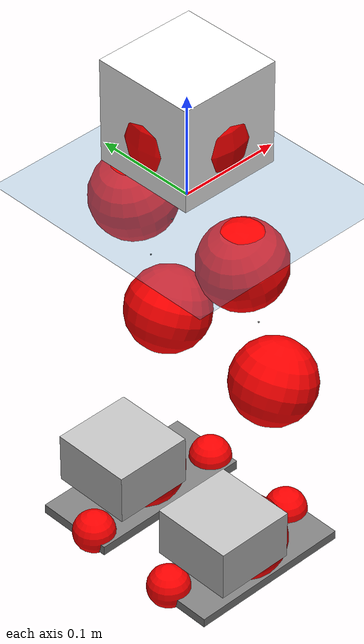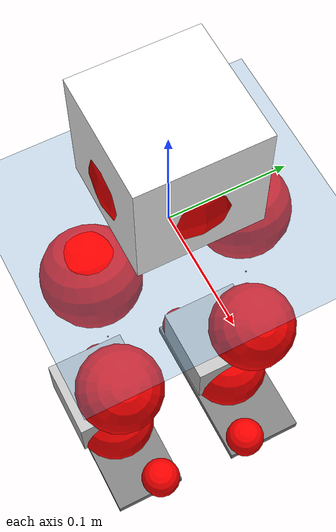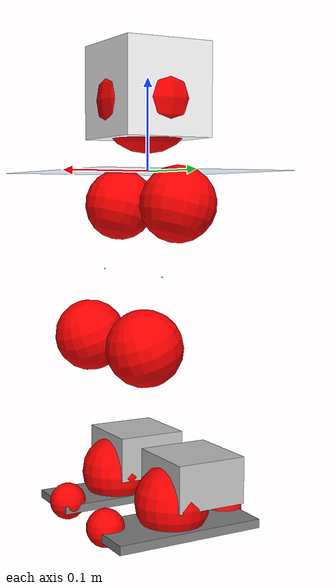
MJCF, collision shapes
<mujoco model="pi_12dof_release_v1">
  <compiler angle="radian" assetdir="assets" balanceinertia="true" inertiafromgeom="false"/>

  <option timestep="0.005" density="1.2" viscosity="2e-05"/>

  <size nkey="1"/>

  <visual>
    <quality shadowsize="8192"/>
    <map shadowclip="0.5"/>
  </visual>

  <default>
    <default class="/">
      <joint armature="0.01" damping="0.01" frictionloss="0.01"/>
      <geom contype="0" conaffinity="0" group="1" solref="-1000 -80"/>
      <site size="0.01 0.005 0.005" group="5"/>
      <general forcelimited="true" biastype="affine" gainprm="20" biasprm="0 -20 -0.5"/>
      <default class="foot">
        <geom size="0.0845 0.036 0.005" type="box" condim="6" group="4" priority="1" friction="0.9 0.2 0.2" solimp="0.015 1 0.005"/>
      </default>
      <default class="reward_collision_sphere">
        <geom group="5" rgba="1 0 0 1"/>
      </default>
    </default>
  </default>

  <asset>
    <texture type="skybox" colorspace="auto" name="//unnamed_texture_0" builtin="gradient" rgb1="0.95 0.95 0.95" rgb2="0.95 0.95 0.95" width="100" height="600"/>
    <texture type="2d" colorspace="auto" name="texplane" builtin="checker" rgb1="0.345 0.575 0.748" rgb2="0.345 0.575 0.748" markrgb="1 1 1" width="512" height="512"/>
    <material name="MatPlane" class="/" texture="texplane" texuniform="true" texrepeat="2 2" specular="0.9"/>
    <mesh name="baselink_1" class="/" file="baselink_1.STL"/>
    <mesh name="r_hip_pitch_link" class="/" file="r_hip_pitch_link.STL"/>
    <mesh name="r_hip_roll_link" class="/" file="r_hip_roll_link.STL"/>
    <mesh name="r_thigh_link" class="/" file="r_thigh_link.STL"/>
    <mesh name="r_calf_link" class="/" file="r_calf_link.STL"/>
    <mesh name="r_ankle_pitch_link" class="/" file="r_ankle_pitch_link.STL"/>
    <mesh name="r_ankle_roll_link" class="/" file="r_ankle_roll_link.STL"/>
    <mesh name="l_hip_pitch_link" class="/" file="l_hip_pitch_link.STL"/>
    <mesh name="l_hip_roll_link" class="/" file="l_hip_roll_link.STL"/>
    <mesh name="l_thigh_link" class="/" file="l_thigh_link.STL"/>
    <mesh name="l_calf_link" class="/" file="l_calf_link.STL"/>
    <mesh name="l_ankle_pitch_link" class="/" file="l_ankle_pitch_link.STL"/>
    <mesh name="l_ankle_roll_link" class="/" file="l_ankle_roll_link.STL"/>
  </asset>

  <worldbody>
    <geom name="floor" class="/" size="100 100 0.125" type="plane" group="0" material="MatPlane"/>
    <light name="toplight_shadow" class="/" pos="0 0 5" dir="0.0990148 0.0990148 -0.990148" type="directional" ambient="0.04 0.04 0.04" diffuse="0.55 0.55 0.55" specular="0.12 0.12 0.12"/>
    <light name="toplight_fill" class="/" pos="0 0 5" dir="0.0990148 0.0990148 -0.990148" type="directional" castshadow="false" ambient="0.04 0.04 0.04" diffuse="0.3 0.3 0.3" specular="0.08 0.08 0.08"/>
    <body name="trunk" pos="0.000294907 -0.000120753 -0.00235979" quat="0.999999 -0.000360518 0.000274687 -0.000963385">
      <inertial pos="0.00195908 0.000392431 0.0443372" quat="0.700708 0.010002 0.00268234 0.713373" mass="2.25674" diaginertia="0.0148637 0.00402573 0.0068717"/>
      <joint name="//unnamed_joint_0" type="free"/>
      <geom name="//unnamed_geom_1" class="/" type="mesh" density="0" rgba="1 1 1 1" mesh="baselink_1"/>
      <geom name="//unnamed_geom_2" class="/" size="0.0504163 0.0504163 0.0504163" pos="0 0 0.0878497" type="box" rgba="1 1 1 1"/>
      <geom name="//unnamed_geom_3" class="reward_collision_sphere" size="0.055458" pos="0 0 0.0768684"/>
      <site name="imu" class="/" pos="-0.00181312 -0.000217185 -0.00611762" size="0.0100833"/>
      <camera name="track" class="/" pos="0 -1.69013 0" quat="0.707107 0.707107 0 0" mode="trackcom"/>
      <camera name="ego_camera" class="/" pos="0.0811344 0 0.197662" quat="-0.5 -0.5 0.5 0.5"/>
      <body name="r_hip_pitch_link" pos="0.000957091 -0.019916 -0.0351076" quat="0.992202 5.01956e-07 -0.124637 2.45592e-05">
        <inertial pos="-0.000633305 -0.0478464 -0.00198834" quat="-0.02467 0.712765 -0.0256008 0.700502" mass="0.380495" diaginertia="0.000162948 4.28374e-05 0.000132709"/>
        <joint name="r_hip_pitch_joint" class="/" pos="0 0 0" axis="0.00171202 -0.999988 0.00453197" stiffness="0.00354709" range="-1.76368 1.2683" armature="0.0100283" damping="0.0178402" frictionloss="0.0100462"/>
        <geom name="//unnamed_geom_4" class="/" type="mesh" density="0" rgba="0.75294 0.75294 0.75294 1" mesh="r_hip_pitch_link"/>
        <geom name="//unnamed_geom_5" class="/" size="0.000504163 0.000504163 0.000504163" type="box" rgba="0.75294 0.75294 0.75294 1"/>
        <body name="r_hip_roll_link" pos="-0.00138031 -0.0469971 0.00168908" quat="1 1.49589e-05 -5.96409e-05 -9.16275e-05">
          <inertial pos="-0.000391373 -4.56008e-05 -0.065994" quat="0.707268 -0.0824618 -0.0855434 0.696889" mass="0.386111" diaginertia="0.000481248 0.000117308 0.000197057"/>
          <joint name="r_hip_roll_joint" class="/" pos="0 0 0" axis="-0.999993 0.000893452 -0.00366075" range="-0.117172 0.492749" armature="0.00884738" damping="0.00702119" frictionloss="0.0101353"/>
          <geom name="//unnamed_geom_6" class="/" type="mesh" density="0" rgba="0.75294 0.75294 0.75294 1" mesh="r_hip_roll_link"/>
          <geom name="//unnamed_geom_7" class="/" size="0.000504163 0.000504163 0.000504163" type="box" rgba="0.75294 0.75294 0.75294 1"/>
          <geom name="//unnamed_geom_8" class="reward_collision_sphere" size="0.0403331"/>
          <body name="r_thigh_link" pos="0.00117989 -0.000285571 -0.0757859" quat="1 6.68152e-05 1.21355e-05 2.81651e-05">
            <inertial pos="-0.00210552 -0.00142289 -0.0518894" quat="0.737401 0.675453 -2.0925e-05 -0.00169938" mass="0.114901" diaginertia="0.000180042 4.09751e-05 9.25159e-05"/>
            <joint name="r_thigh_joint" class="/" pos="0 0 0" axis="0.000263642 -0.000936726 -1" range="-0.291532 0.623888" armature="0.00895944" damping="0.00817518" frictionloss="0.0101545"/>
            <geom name="//unnamed_geom_9" class="/" type="mesh" density="0" rgba="0.75294 0.75294 0.75294 1" mesh="r_thigh_link"/>
            <geom name="//unnamed_geom_10" class="/" size="0.000504163 0.000504163 0.000504163" type="box" rgba="0.75294 0.75294 0.75294 1"/>
            <body name="r_calf_link" pos="-0.00125143 -0.00140241 -0.07766" quat="0.947546 0.000896784 0.319619 -0.000791016">
              <inertial pos="0.000478192 -0.00078152 -0.0767128" quat="0.999961 0.00298366 -0.00815088 -0.00144298" mass="0.870123" diaginertia="0.00526856 0.00153087 0.00028282"/>
              <joint name="r_calf_joint" class="/" pos="0 0 0" axis="0.00426745 -0.999986 -0.00308976" stiffness="0.00273535" range="-1.64736 0.641432" armature="0.0100709" damping="0.00820959" frictionloss="0.0103566"/>
              <geom name="//unnamed_geom_11" class="/" type="mesh" density="0" rgba="0.75294 0.75294 0.75294 1" mesh="r_calf_link"/>
              <geom name="//unnamed_geom_12" class="/" size="0.000504163 0.000504163 0.000504163" type="box" rgba="0.75294 0.75294 0.75294 1"/>
              <geom name="//unnamed_geom_13" class="reward_collision_sphere" size="0.0403331"/>
              <body name="r_ankle_pitch_link" pos="0.00106726 0.000909805 -0.152843" quat="0.980048 -7.88772e-06 -0.198761 -0.0002046">
                <inertial pos="0.0058133 0.00293471 0.000848263" quat="0.00305628 0.71039 -0.00198525 0.703799" mass="0.183065" diaginertia="0.000457268 9.39741e-05 0.000189517"/>
                <joint name="r_ankle_pitch_joint" class="/" pos="0 0 0" axis="0.000109621 -1 0.000484089" range="-1.29264 0.498744" armature="0.010569" damping="0.0224847" frictionloss="0.0100694"/>
                <geom name="//unnamed_geom_14" class="/" type="mesh" density="0" rgba="0.75294 0.75294 0.75294 1" mesh="r_ankle_pitch_link"/>
                <geom name="//unnamed_geom_15" class="/" size="0.0393247 0.0403331 0.0252082" type="box" rgba="0.75294 0.75294 0.75294 1"/>
                <body name="r_ankle_roll_link" pos="0.0806853 0.000920184 0.000288427" quat="1 0.000187979 6.53222e-05 0.000240357">
                  <inertial pos="-0.0244459 -0.00187388 -0.0148179" quat="0.560924 0.421356 0.442146 0.558865" mass="0.518269" diaginertia="0.00162329 0.000442835 0.000439146"/>
                  <joint name="r_ankle_roll_joint" class="/" pos="0 0 0" axis="-0.999994 0.00331538 -0.0010138" range="-0.200026 0.151922" armature="0.00916686" damping="0.00954825" frictionloss="0.00899293"/>
                  <geom name="//unnamed_geom_16" class="/" type="mesh" density="0" rgba="0.75294 0.75294 0.75294 1" mesh="r_ankle_roll_link"/>
                  <geom name="//unnamed_geom_17" class="/" type="mesh" rgba="0.75294 0.75294 0.75294 1" mesh="r_ankle_roll_link"/>
                  <geom name="right_foot" class="foot" size="0.0819958 0.0355434 0.00450535" pos="-0.0551714 0 -0.0483173"/>
                  <geom name="//unnamed_geom_19" class="reward_collision_sphere" size="0.0403331" pos="-0.0540896 0 -0.0219624"/>
                  <geom name="//unnamed_geom_20" class="reward_collision_sphere" size="0.0201665" pos="0.0162269 0.0169013 -0.0439248"/>
                  <geom name="//unnamed_geom_21" class="reward_collision_sphere" size="0.0201665" pos="-0.129815 0.0169013 -0.0439248"/>
                  <site name="right_foot" class="foot" pos="-0.0551714 0 -0.0483173" size="0.0100833"/>
                </body>
              </body>
            </body>
          </body>
        </body>
      </body>
      <body name="l_hip_pitch_link" pos="0.000711005 0.0190974 -0.0347159" quat="0.992211 4.22208e-05 -0.124564 -0.000411031">
        <inertial pos="0.00188797 0.0433228 -0.00251058" quat="-0.0349784 0.704076 0.027482 0.70873" mass="0.397654" diaginertia="0.000191749 4.48081e-05 0.000158644"/>
        <joint name="l_hip_pitch_joint" class="/" pos="0 0 0" axis="0.000835235 0.999952 -0.00979255" range="-1.29321 1.76179" armature="0.0100832" damping="0" frictionloss="0.00989943"/>
        <geom name="//unnamed_geom_22" class="/" type="mesh" density="0" rgba="0.75294 0.75294 0.75294 1" mesh="l_hip_pitch_link"/>
        <geom name="//unnamed_geom_23" class="/" size="0.000504163 0.000504163 0.000504163" type="box" rgba="0.75294 0.75294 0.75294 1"/>
        <body name="l_hip_roll_link" pos="-0.000904216 0.0453882 0.00216296" quat="1 0.000315078 8.23906e-05 0.000269732">
          <inertial pos="0.000948309 -0.00108634 -0.0696355" quat="0.699232 -0.075196 -0.0780782 0.706629" mass="0.408937" diaginertia="0.000522778 0.000123572 0.000213294"/>
          <joint name="l_hip_roll_joint" class="/" pos="0 0 0" axis="-0.999998 -0.00101627 -0.00192097" range="-0.49966 0.117017" armature="0.00965989" damping="0.0069991" frictionloss="0.0100824"/>
          <geom name="//unnamed_geom_24" class="/" type="mesh" density="0" rgba="0.75294 0.75294 0.75294 1" mesh="l_hip_roll_link"/>
          <geom name="//unnamed_geom_25" class="/" size="0.000504163 0.000504163 0.000504163" type="box" rgba="0.75294 0.75294 0.75294 1"/>
          <geom name="//unnamed_geom_26" class="reward_collision_sphere" size="0.0403331"/>
          <body name="l_thigh_link" pos="-0.000510015 -0.000536749 -0.0772145" quat="1 -4.85014e-05 -0.000417474 0.000416836">
            <inertial pos="-0.0017955 -0.00134958 -0.0548159" quat="0.67258 0.739967 0.00815497 -0.00434154" mass="0.114963" diaginertia="0.000183681 4.06227e-05 9.06067e-05"/>
            <joint name="l_thigh_joint" class="/" pos="0 0 0" axis="-0.000328216 0.00035354 -1" range="-0.605921 0.297592" armature="0.0103412" damping="0.0114758" frictionloss="0.0113057"/>
            <geom name="//unnamed_geom_27" class="/" type="mesh" density="0" rgba="0.75294 0.75294 0.75294 1" mesh="l_thigh_link"/>
            <geom name="//unnamed_geom_28" class="/" size="0.000504163 0.000504163 0.000504163" type="box" rgba="0.75294 0.75294 0.75294 1"/>
            <body name="l_calf_link" pos="0.00205453 0.000331306 -0.0753632" quat="0.947651 -3.82311e-06 0.319307 6.74117e-07">
              <inertial pos="-0.000747956 0.00243418 -0.0777096" quat="0.99998 0.00215896 -0.00300707 -0.00508719" mass="0.831864" diaginertia="0.00551891 0.00154969 0.000285684"/>
              <joint name="l_calf_joint" class="/" pos="0 0 0" axis="0.00023439 1 0.000372501" range="-0.685455 1.69447" armature="0.0097115" damping="0.00475215" frictionloss="0.0102614"/>
              <geom name="//unnamed_geom_29" class="/" type="mesh" density="0" rgba="0.75294 0.75294 0.75294 1" mesh="l_calf_link"/>
              <geom name="//unnamed_geom_30" class="/" size="0.000504163 0.000504163 0.000504163" type="box" rgba="0.75294 0.75294 0.75294 1"/>
              <geom name="//unnamed_geom_31" class="reward_collision_sphere" size="0.0403331"/>
              <body name="l_ankle_pitch_link" pos="0.00205574 -0.000291954 -0.152845" quat="0.980069 1.27971e-05 -0.198657 -4.11164e-05">
                <inertial pos="0.00466374 -0.000786243 -0.0022324" quat="-0.00165553 0.706252 0.000395551 0.707958" mass="0.177058" diaginertia="0.000471536 9.72026e-05 0.000192021"/>
                <joint name="l_ankle_pitch_joint" class="/" pos="0 0 0" axis="-0.00308588 0.999995 -0.000877462" stiffness="0.00251838" range="-0.51646 1.31584" armature="0.0105132" damping="0" frictionloss="0.00943499"/>
                <geom name="//unnamed_geom_32" class="/" type="mesh" density="0" rgba="0.75294 0.75294 0.75294 1" mesh="l_ankle_pitch_link"/>
                <geom name="//unnamed_geom_33" class="/" size="0.0393247 0.0403331 0.0252082" type="box" rgba="0.75294 0.75294 0.75294 1"/>
                <body name="l_ankle_roll_link" pos="0.0794439 0.00168765 -0.00180625" quat="0.999999 0.00066264 0.000670145 0.000803813">
                  <inertial pos="-0.026883 -0.000255898 -0.0156794" quat="0.567758 0.42874 0.433887 0.552788" mass="0.535028" diaginertia="0.00168028 0.000442974 0.00044074"/>
                  <joint name="l_ankle_roll_joint" class="/" pos="0 0 0" axis="-1 0.000236981 0.000731403" stiffness="0.00111253" range="-0.151668 0.10269" armature="0.0100834" damping="0.00235374" frictionloss="0.0103684"/>
                  <geom name="//unnamed_geom_34" class="/" type="mesh" density="0" rgba="0.75294 0.75294 0.75294 1" mesh="l_ankle_roll_link"/>
                  <geom name="//unnamed_geom_35" class="/" type="mesh" rgba="0.75294 0.75294 0.75294 1" mesh="l_ankle_roll_link"/>
                  <geom name="left_foot" class="foot" size="0.0833202 0.0391763 0.00477452" pos="-0.0551714 0 -0.0483173"/>
                  <geom name="//unnamed_geom_37" class="reward_collision_sphere" size="0.0403331" pos="-0.0540896 0 -0.0219624"/>
                  <geom name="//unnamed_geom_38" class="reward_collision_sphere" size="0.0201665" pos="0.0162269 -0.0169013 -0.0439248"/>
                  <geom name="//unnamed_geom_39" class="reward_collision_sphere" size="0.0201665" pos="-0.129815 -0.0169013 -0.0439248"/>
                  <site name="left_foot" class="foot" pos="-0.0551714 0 -0.0483173" size="0.0100833"/>
                </body>
              </body>
            </body>
          </body>
        </body>
      </body>
    </body>
  </worldbody>

  <contact>
    <pair class="/" geom1="floor" geom2="right_foot" name="//unnamed_contact_1"/>
    <pair class="/" geom1="floor" geom2="left_foot" name="//unnamed_contact_0"/>
  </contact>

  <actuator>
    <general name="r_hip_pitch_joint" class="/" joint="r_hip_pitch_joint" forcerange="-22.6076 22.6076" gainprm="18.9783" biasprm="0 -18.9783 -0.483124"/>
    <general name="r_hip_roll_joint" class="/" joint="r_hip_roll_joint" forcerange="-19.2449 19.2449" gainprm="18.9783" biasprm="0 -18.9783 -0.483124"/>
    <general name="r_thigh_joint" class="/" joint="r_thigh_joint" forcerange="-21.3306 21.3306" gainprm="18.9783" biasprm="0 -18.9783 -0.483124"/>
    <general name="r_calf_joint" class="/" joint="r_calf_joint" forcerange="-23.1343 23.1343" gainprm="18.9783" biasprm="0 -18.9783 -0.483124"/>
    <general name="r_ankle_pitch_joint" class="/" joint="r_ankle_pitch_joint" forcerange="-21.7831 21.7831" gainprm="18.9783" biasprm="0 -18.9783 -0.483124"/>
    <general name="r_ankle_roll_joint" class="/" joint="r_ankle_roll_joint" forcerange="-19.216 19.216" gainprm="18.9783" biasprm="0 -18.9783 -0.483124"/>
    <general name="l_hip_pitch_joint" class="/" joint="l_hip_pitch_joint" forcerange="-21.4168 21.4168" gainprm="18.9783" biasprm="0 -18.9783 -0.483124"/>
    <general name="l_hip_roll_joint" class="/" joint="l_hip_roll_joint" forcerange="-20.9784 20.9784" gainprm="18.9783" biasprm="0 -18.9783 -0.483124"/>
    <general name="l_thigh_joint" class="/" joint="l_thigh_joint" forcerange="-21.0544 21.0544" gainprm="18.9783" biasprm="0 -18.9783 -0.483124"/>
    <general name="l_calf_joint" class="/" joint="l_calf_joint" forcerange="-21.2064 21.2064" gainprm="18.9783" biasprm="0 -18.9783 -0.483124"/>
    <general name="l_ankle_pitch_joint" class="/" joint="l_ankle_pitch_joint" forcerange="-20.9135 20.9135" gainprm="18.9783" biasprm="0 -18.9783 -0.483124"/>
    <general name="l_ankle_roll_joint" class="/" joint="l_ankle_roll_joint" forcerange="-21.4467 21.4467" gainprm="18.9783" biasprm="0 -18.9783 -0.483124"/>
  </actuator>

  <sensor>
    <gyro site="imu" name="imu_angular_velocity"/>
    <velocimeter site="imu" name="imu_linear_velocity"/>
    <framelinvel objtype="site" objname="left_foot" name="left_foot_global_linear_velocity"/>
    <framelinvel objtype="site" objname="right_foot" name="right_foot_global_linear_velocity"/>
  </sensor>

  <keyframe>
    <key name="home" qpos="0 0 0.291 1 0 0 0 0.4 0 0 -0.8 0.4 0 -0.4 0 0 0.8 -0.4 0"/>
  </keyframe>
</mujoco>
